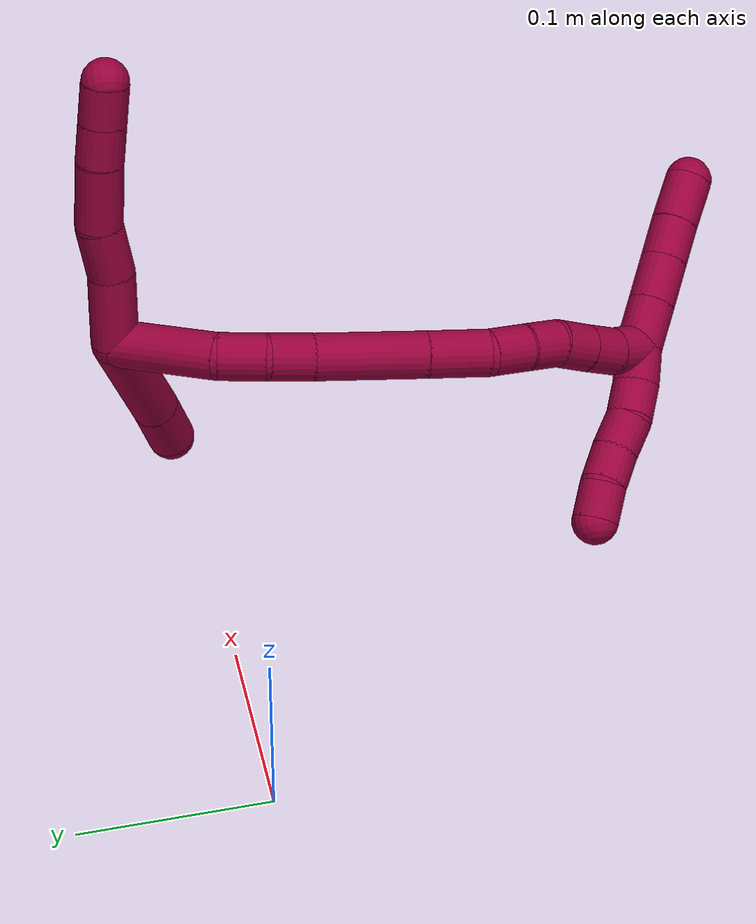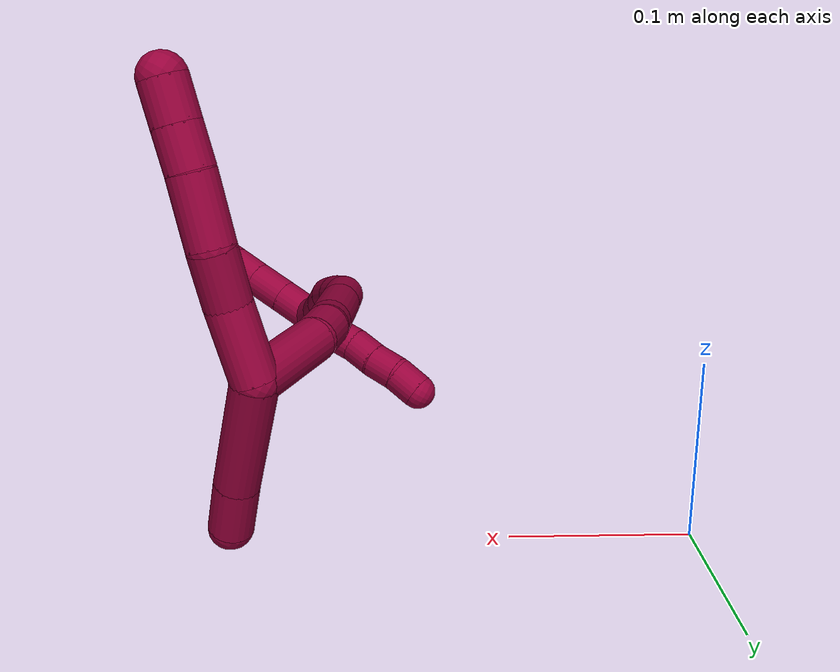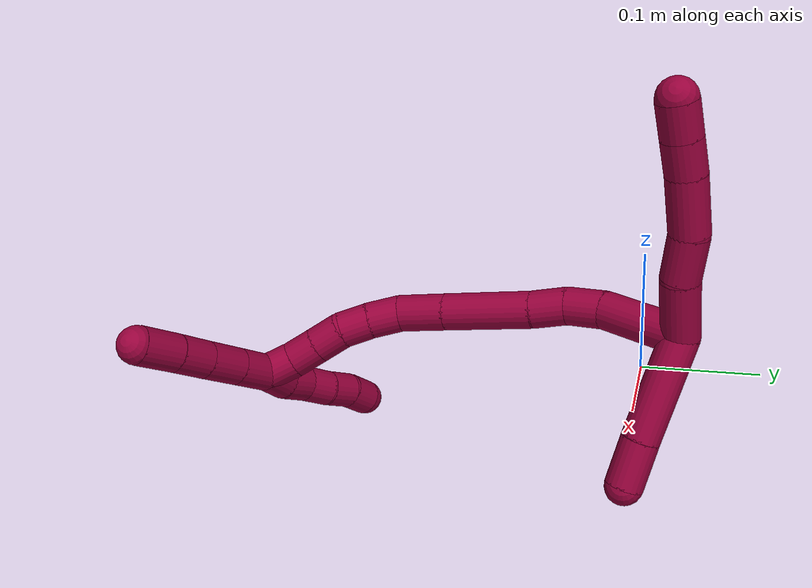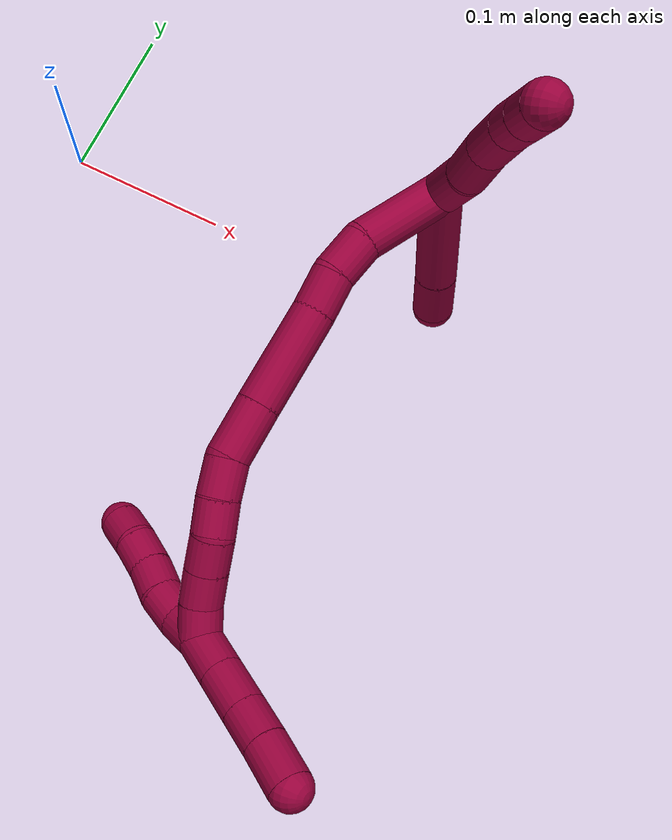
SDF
<sdf version="1.7">
 <world name="default">
  <model name="8">
   <static>0</static>
   <link name="8">
    <collision name="collision-cylinder-e_1_2_8">
     <pose>-0.012308 0.005212 0.015021 -0.333969 -0.658768 0.115109</pose>
     <geometry><cylinder><radius>0.0125</radius><length>0.040214</length></cylinder></geometry>
     <surface>
      <friction><ode><mu>1.16</mu><mu2>1.16</mu2><slip1>0</slip1><slip2>0</slip2></ode></friction>
      <contact><ode><kp>1e+06</kp><kd>1</kd><max_vel>0</max_vel><min_depth>0.001</min_depth></ode></contact>
     </surface>
    </collision>
    <visual name="visual-cylinder-e_1_2_8">
     <pose>-0.012308 0.005212 0.015021 -0.333969 -0.658768 0.115109</pose>
     <geometry><cylinder><radius>0.0125</radius><length>0.040214</length></cylinder></geometry>
     <material><ambient>0.584314 0 0.227451 1</ambient></material>
    </visual>
    <collision name="collision-cylinder-e_2_8_9">
     <pose>-0.033259 0.017011 0.040032 -0.582953 -0.62549 0.193423</pose>
     <geometry><cylinder><radius>0.0125</radius><length>0.029523</length></cylinder></geometry>
     <surface>
      <friction><ode><mu>1.16</mu><mu2>1.16</mu2><slip1>0</slip1><slip2>0</slip2></ode></friction>
      <contact><ode><kp>1e+06</kp><kd>1</kd><max_vel>0</max_vel><min_depth>0.001</min_depth></ode></contact>
     </surface>
    </collision>
    <visual name="visual-cylinder-e_2_8_9">
     <pose>-0.033259 0.017011 0.040032 -0.582953 -0.62549 0.193423</pose>
     <geometry><cylinder><radius>0.0125</radius><length>0.029523</length></cylinder></geometry>
     <material><ambient>0.584314 0 0.227451 1</ambient></material>
    </visual>
    <collision name="collision-cylinder-e_3_9_10">
     <pose>-0.054137 0.027799 0.062773 -0.318259 -0.739099 0.124167</pose>
     <geometry><cylinder><radius>0.0125</radius><length>0.036327</length></cylinder></geometry>
     <surface>
      <friction><ode><mu>1.16</mu><mu2>1.16</mu2><slip1>0</slip1><slip2>0</slip2></ode></friction>
      <contact><ode><kp>1e+06</kp><kd>1</kd><max_vel>0</max_vel><min_depth>0.001</min_depth></ode></contact>
     </surface>
    </collision>
    <visual name="visual-cylinder-e_3_9_10">
     <pose>-0.054137 0.027799 0.062773 -0.318259 -0.739099 0.124167</pose>
     <geometry><cylinder><radius>0.0125</radius><length>0.036327</length></cylinder></geometry>
     <material><ambient>0.584314 0 0.227451 1</ambient></material>
    </visual>
    <collision name="collision-cylinder-e_4_10_11">
     <pose>-0.073665 0.033797 0.083571 -0.219693 -0.724071 0.083492</pose>
     <geometry><cylinder><radius>0.0125</radius><length>0.022016</length></cylinder></geometry>
     <surface>
      <friction><ode><mu>1.16</mu><mu2>1.16</mu2><slip1>0</slip1><slip2>0</slip2></ode></friction>
      <contact><ode><kp>1e+06</kp><kd>1</kd><max_vel>0</max_vel><min_depth>0.001</min_depth></ode></contact>
     </surface>
    </collision>
    <visual name="visual-cylinder-e_4_10_11">
     <pose>-0.073665 0.033797 0.083571 -0.219693 -0.724071 0.083492</pose>
     <geometry><cylinder><radius>0.0125</radius><length>0.022016</length></cylinder></geometry>
     <material><ambient>0.584314 0 0.227451 1</ambient></material>
    </visual>
    <collision name="collision-cylinder-e_5_11_6">
     <pose>-0.088238 0.037384 0.099613 -0.220228 -0.726618 0.084018</pose>
     <geometry><cylinder><radius>0.0125</radius><length>0.02192</length></cylinder></geometry>
     <surface>
      <friction><ode><mu>1.16</mu><mu2>1.16</mu2><slip1>0</slip1><slip2>0</slip2></ode></friction>
      <contact><ode><kp>1e+06</kp><kd>1</kd><max_vel>0</max_vel><min_depth>0.001</min_depth></ode></contact>
     </surface>
    </collision>
    <visual name="visual-cylinder-e_5_11_6">
     <pose>-0.088238 0.037384 0.099613 -0.220228 -0.726618 0.084018</pose>
     <geometry><cylinder><radius>0.0125</radius><length>0.02192</length></cylinder></geometry>
     <material><ambient>0.584314 0 0.227451 1</ambient></material>
    </visual>
    <collision name="collision-cylinder-e_1_2_12">
     <pose>0.023615 -0.022484 -0.010444 2.00565 0.761094 1.11997</pose>
     <geometry><cylinder><radius>0.0125</radius><length>0.068476</length></cylinder></geometry>
     <surface>
      <friction><ode><mu>1.16</mu><mu2>1.16</mu2><slip1>0</slip1><slip2>0</slip2></ode></friction>
      <contact><ode><kp>1e+06</kp><kd>1</kd><max_vel>0</max_vel><min_depth>0.001</min_depth></ode></contact>
     </surface>
    </collision>
    <visual name="visual-cylinder-e_1_2_12">
     <pose>0.023615 -0.022484 -0.010444 2.00565 0.761094 1.11997</pose>
     <geometry><cylinder><radius>0.0125</radius><length>0.068476</length></cylinder></geometry>
     <material><ambient>0.584314 0 0.227451 1</ambient></material>
    </visual>
    <collision name="collision-cylinder-e_2_12_5">
     <pose>0.058227 -0.054922 -0.026216 2.06226 0.772284 1.19264</pose>
     <geometry><cylinder><radius>0.0125</radius><length>0.031524</length></cylinder></geometry>
     <surface>
      <friction><ode><mu>1.16</mu><mu2>1.16</mu2><slip1>0</slip1><slip2>0</slip2></ode></friction>
      <contact><ode><kp>1e+06</kp><kd>1</kd><max_vel>0</max_vel><min_depth>0.001</min_depth></ode></contact>
     </surface>
    </collision>
    <visual name="visual-cylinder-e_2_12_5">
     <pose>0.058227 -0.054922 -0.026216 2.06226 0.772284 1.19264</pose>
     <geometry><cylinder><radius>0.0125</radius><length>0.031524</length></cylinder></geometry>
     <material><ambient>0.584314 0 0.227451 1</ambient></material>
    </visual>
    <collision name="collision-cylinder-e_1_2_13">
     <pose>-0.018784 -0.018863 -0.008761 2.00562 -0.734554 -1.08511</pose>
     <geometry><cylinder><radius>0.0125</radius><length>0.056049</length></cylinder></geometry>
     <surface>
      <friction><ode><mu>1.16</mu><mu2>1.16</mu2><slip1>0</slip1><slip2>0</slip2></ode></friction>
      <contact><ode><kp>1e+06</kp><kd>1</kd><max_vel>0</max_vel><min_depth>0.001</min_depth></ode></contact>
     </surface>
    </collision>
    <visual name="visual-cylinder-e_1_2_13">
     <pose>-0.018784 -0.018863 -0.008761 2.00562 -0.734554 -1.08511</pose>
     <geometry><cylinder><radius>0.0125</radius><length>0.056049</length></cylinder></geometry>
     <material><ambient>0.584314 0 0.227451 1</ambient></material>
    </visual>
    <collision name="collision-cylinder-e_2_13_14">
     <pose>-0.043925 -0.048581 -0.019486 1.74972 -0.522796 -0.619843</pose>
     <geometry><cylinder><radius>0.0125</radius><length>0.025465</length></cylinder></geometry>
     <surface>
      <friction><ode><mu>1.16</mu><mu2>1.16</mu2><slip1>0</slip1><slip2>0</slip2></ode></friction>
      <contact><ode><kp>1e+06</kp><kd>1</kd><max_vel>0</max_vel><min_depth>0.001</min_depth></ode></contact>
     </surface>
    </collision>
    <visual name="visual-cylinder-e_2_13_14">
     <pose>-0.043925 -0.048581 -0.019486 1.74972 -0.522796 -0.619843</pose>
     <geometry><cylinder><radius>0.0125</radius><length>0.025465</length></cylinder></geometry>
     <material><ambient>0.584314 0 0.227451 1</ambient></material>
    </visual>
    <collision name="collision-cylinder-e_3_14_15">
     <pose>-0.053613 -0.070865 -0.022294 1.64463 -0.282868 -0.304243</pose>
     <geometry><cylinder><radius>0.0125</radius><length>0.023867</length></cylinder></geometry>
     <surface>
      <friction><ode><mu>1.16</mu><mu2>1.16</mu2><slip1>0</slip1><slip2>0</slip2></ode></friction>
      <contact><ode><kp>1e+06</kp><kd>1</kd><max_vel>0</max_vel><min_depth>0.001</min_depth></ode></contact>
     </surface>
    </collision>
    <visual name="visual-cylinder-e_3_14_15">
     <pose>-0.053613 -0.070865 -0.022294 1.64463 -0.282868 -0.304243</pose>
     <geometry><cylinder><radius>0.0125</radius><length>0.023867</length></cylinder></geometry>
     <material><ambient>0.584314 0 0.227451 1</ambient></material>
    </visual>
    <collision name="collision-cylinder-e_4_15_16">
     <pose>-0.067665 -0.110045 -0.025334 1.64971 -0.367613 -0.397072</pose>
     <geometry><cylinder><radius>0.0125</radius><length>0.059664</length></cylinder></geometry>
     <surface>
      <friction><ode><mu>1.16</mu><mu2>1.16</mu2><slip1>0</slip1><slip2>0</slip2></ode></friction>
      <contact><ode><kp>1e+06</kp><kd>1</kd><max_vel>0</max_vel><min_depth>0.001</min_depth></ode></contact>
     </surface>
    </collision>
    <visual name="visual-cylinder-e_4_15_16">
     <pose>-0.067665 -0.110045 -0.025334 1.64971 -0.367613 -0.397072</pose>
     <geometry><cylinder><radius>0.0125</radius><length>0.059664</length></cylinder></geometry>
     <material><ambient>0.584314 0 0.227451 1</ambient></material>
    </visual>
    <collision name="collision-cylinder-e_5_16_17">
     <pose>-0.084158 -0.153077 -0.028588 1.64002 -0.360342 -0.385578</pose>
     <geometry><cylinder><radius>0.0125</radius><length>0.032735</length></cylinder></geometry>
     <surface>
      <friction><ode><mu>1.16</mu><mu2>1.16</mu2><slip1>0</slip1><slip2>0</slip2></ode></friction>
      <contact><ode><kp>1e+06</kp><kd>1</kd><max_vel>0</max_vel><min_depth>0.001</min_depth></ode></contact>
     </surface>
    </collision>
    <visual name="visual-cylinder-e_5_16_17">
     <pose>-0.084158 -0.153077 -0.028588 1.64002 -0.360342 -0.385578</pose>
     <geometry><cylinder><radius>0.0125</radius><length>0.032735</length></cylinder></geometry>
     <material><ambient>0.584314 0 0.227451 1</ambient></material>
    </visual>
    <collision name="collision-cylinder-e_6_17_18">
     <pose>-0.091035 -0.179213 -0.028465 1.46231 -0.100999 -0.090611</pose>
     <geometry><cylinder><radius>0.0125</radius><length>0.021953</length></cylinder></geometry>
     <surface>
      <friction><ode><mu>1.16</mu><mu2>1.16</mu2><slip1>0</slip1><slip2>0</slip2></ode></friction>
      <contact><ode><kp>1e+06</kp><kd>1</kd><max_vel>0</max_vel><min_depth>0.001</min_depth></ode></contact>
     </surface>
    </collision>
    <visual name="visual-cylinder-e_6_17_18">
     <pose>-0.091035 -0.179213 -0.028465 1.46231 -0.100999 -0.090611</pose>
     <geometry><cylinder><radius>0.0125</radius><length>0.021953</length></cylinder></geometry>
     <material><ambient>0.584314 0 0.227451 1</ambient></material>
    </visual>
    <collision name="collision-cylinder-e_7_18_19">
     <pose>-0.092068 -0.200088 -0.026018 1.44523 0.007325 0.006458</pose>
     <geometry><cylinder><radius>0.0125</radius><length>0.020197</length></cylinder></geometry>
     <surface>
      <friction><ode><mu>1.16</mu><mu2>1.16</mu2><slip1>0</slip1><slip2>0</slip2></ode></friction>
      <contact><ode><kp>1e+06</kp><kd>1</kd><max_vel>0</max_vel><min_depth>0.001</min_depth></ode></contact>
     </surface>
    </collision>
    <visual name="visual-cylinder-e_7_18_19">
     <pose>-0.092068 -0.200088 -0.026018 1.44523 0.007325 0.006458</pose>
     <geometry><cylinder><radius>0.0125</radius><length>0.020197</length></cylinder></geometry>
     <material><ambient>0.584314 0 0.227451 1</ambient></material>
    </visual>
    <collision name="collision-cylinder-e_8_19_20">
     <pose>-0.090336 -0.219944 -0.02546 1.64247 0.166515 0.178835</pose>
     <geometry><cylinder><radius>0.0125</radius><length>0.020003</length></cylinder></geometry>
     <surface>
      <friction><ode><mu>1.16</mu><mu2>1.16</mu2><slip1>0</slip1><slip2>0</slip2></ode></friction>
      <contact><ode><kp>1e+06</kp><kd>1</kd><max_vel>0</max_vel><min_depth>0.001</min_depth></ode></contact>
     </surface>
    </collision>
    <visual name="visual-cylinder-e_8_19_20">
     <pose>-0.090336 -0.219944 -0.02546 1.64247 0.166515 0.178835</pose>
     <geometry><cylinder><radius>0.0125</radius><length>0.020003</length></cylinder></geometry>
     <material><ambient>0.584314 0 0.227451 1</ambient></material>
    </visual>
    <collision name="collision-cylinder-e_9_20_21">
     <pose>-0.086989 -0.239641 -0.026595 1.61431 0.169622 0.177129</pose>
     <geometry><cylinder><radius>0.0125</radius><length>0.020023</length></cylinder></geometry>
     <surface>
      <friction><ode><mu>1.16</mu><mu2>1.16</mu2><slip1>0</slip1><slip2>0</slip2></ode></friction>
      <contact><ode><kp>1e+06</kp><kd>1</kd><max_vel>0</max_vel><min_depth>0.001</min_depth></ode></contact>
     </surface>
    </collision>
    <visual name="visual-cylinder-e_9_20_21">
     <pose>-0.086989 -0.239641 -0.026595 1.61431 0.169622 0.177129</pose>
     <geometry><cylinder><radius>0.0125</radius><length>0.020023</length></cylinder></geometry>
     <material><ambient>0.584314 0 0.227451 1</ambient></material>
    </visual>
    <collision name="collision-cylinder-e_10_21_1">
     <pose>-0.083811 -0.259295 -0.025521 1.41851 0.148948 0.127895</pose>
     <geometry><cylinder><radius>0.0125</radius><length>0.020043</length></cylinder></geometry>
     <surface>
      <friction><ode><mu>1.16</mu><mu2>1.16</mu2><slip1>0</slip1><slip2>0</slip2></ode></friction>
      <contact><ode><kp>1e+06</kp><kd>1</kd><max_vel>0</max_vel><min_depth>0.001</min_depth></ode></contact>
     </surface>
    </collision>
    <visual name="visual-cylinder-e_10_21_1">
     <pose>-0.083811 -0.259295 -0.025521 1.41851 0.148948 0.127895</pose>
     <geometry><cylinder><radius>0.0125</radius><length>0.020043</length></cylinder></geometry>
     <material><ambient>0.584314 0 0.227451 1</ambient></material>
    </visual>
    <collision name="collision-cylinder-e_1_1_22">
     <pose>-0.08069 -0.267523 -0.033758 -2.98191 0.16421 -1.59885</pose>
     <geometry><cylinder><radius>0.0125</radius><length>0.02</length></cylinder></geometry>
     <surface>
      <friction><ode><mu>1.16</mu><mu2>1.16</mu2><slip1>0</slip1><slip2>0</slip2></ode></friction>
      <contact><ode><kp>1e+06</kp><kd>1</kd><max_vel>0</max_vel><min_depth>0.001</min_depth></ode></contact>
     </surface>
    </collision>
    <visual name="visual-cylinder-e_1_1_22">
     <pose>-0.08069 -0.267523 -0.033758 -2.98191 0.16421 -1.59885</pose>
     <geometry><cylinder><radius>0.0125</radius><length>0.02</length></cylinder></geometry>
     <material><ambient>0.584314 0 0.227451 1</ambient></material>
    </visual>
    <collision name="collision-cylinder-e_2_22_23">
     <pose>-0.078805 -0.262238 -0.052778 -2.76068 0.024997 -0.129483</pose>
     <geometry><cylinder><radius>0.0125</radius><length>0.02</length></cylinder></geometry>
     <surface>
      <friction><ode><mu>1.16</mu><mu2>1.16</mu2><slip1>0</slip1><slip2>0</slip2></ode></friction>
      <contact><ode><kp>1e+06</kp><kd>1</kd><max_vel>0</max_vel><min_depth>0.001</min_depth></ode></contact>
     </surface>
    </collision>
    <visual name="visual-cylinder-e_2_22_23">
     <pose>-0.078805 -0.262238 -0.052778 -2.76068 0.024997 -0.129483</pose>
     <geometry><cylinder><radius>0.0125</radius><length>0.02</length></cylinder></geometry>
     <material><ambient>0.584314 0 0.227451 1</ambient></material>
    </visual>
    <collision name="collision-cylinder-e_3_23_24">
     <pose>-0.076629 -0.253617 -0.070558 -2.61831 0.193801 -0.696427</pose>
     <geometry><cylinder><radius>0.0125</radius><length>0.02</length></cylinder></geometry>
     <surface>
      <friction><ode><mu>1.16</mu><mu2>1.16</mu2><slip1>0</slip1><slip2>0</slip2></ode></friction>
      <contact><ode><kp>1e+06</kp><kd>1</kd><max_vel>0</max_vel><min_depth>0.001</min_depth></ode></contact>
     </surface>
    </collision>
    <visual name="visual-cylinder-e_3_23_24">
     <pose>-0.076629 -0.253617 -0.070558 -2.61831 0.193801 -0.696427</pose>
     <geometry><cylinder><radius>0.0125</radius><length>0.02</length></cylinder></geometry>
     <material><ambient>0.584314 0 0.227451 1</ambient></material>
    </visual>
    <collision name="collision-cylinder-e_4_24_25">
     <pose>-0.073954 -0.244037 -0.087865 -2.65351 0.074974 -0.298988</pose>
     <geometry><cylinder><radius>0.0125</radius><length>0.02</length></cylinder></geometry>
     <surface>
      <friction><ode><mu>1.16</mu><mu2>1.16</mu2><slip1>0</slip1><slip2>0</slip2></ode></friction>
      <contact><ode><kp>1e+06</kp><kd>1</kd><max_vel>0</max_vel><min_depth>0.001</min_depth></ode></contact>
     </surface>
    </collision>
    <visual name="visual-cylinder-e_4_24_25">
     <pose>-0.073954 -0.244037 -0.087865 -2.65351 0.074974 -0.298988</pose>
     <geometry><cylinder><radius>0.0125</radius><length>0.02</length></cylinder></geometry>
     <material><ambient>0.584314 0 0.227451 1</ambient></material>
    </visual>
    <collision name="collision-cylinder-e_5_25_4">
     <pose>-0.071175 -0.236435 -0.106017 -2.83812 0.20443 -1.18173</pose>
     <geometry><cylinder><radius>0.0125</radius><length>0.02</length></cylinder></geometry>
     <surface>
      <friction><ode><mu>1.16</mu><mu2>1.16</mu2><slip1>0</slip1><slip2>0</slip2></ode></friction>
      <contact><ode><kp>1e+06</kp><kd>1</kd><max_vel>0</max_vel><min_depth>0.001</min_depth></ode></contact>
     </surface>
    </collision>
    <visual name="visual-cylinder-e_5_25_4">
     <pose>-0.071175 -0.236435 -0.106017 -2.83812 0.20443 -1.18173</pose>
     <geometry><cylinder><radius>0.0125</radius><length>0.02</length></cylinder></geometry>
     <material><ambient>0.584314 0 0.227451 1</ambient></material>
    </visual>
    <collision name="collision-cylinder-e_1_1_26">
     <pose>-0.083919 -0.274211 -0.01241 0.415384 -0.125045 -0.026384</pose>
     <geometry><cylinder><radius>0.0125</radius><length>0.025572</length></cylinder></geometry>
     <surface>
      <friction><ode><mu>1.16</mu><mu2>1.16</mu2><slip1>0</slip1><slip2>0</slip2></ode></friction>
      <contact><ode><kp>1e+06</kp><kd>1</kd><max_vel>0</max_vel><min_depth>0.001</min_depth></ode></contact>
     </surface>
    </collision>
    <visual name="visual-cylinder-e_1_1_26">
     <pose>-0.083919 -0.274211 -0.01241 0.415384 -0.125045 -0.026384</pose>
     <geometry><cylinder><radius>0.0125</radius><length>0.025572</length></cylinder></geometry>
     <material><ambient>0.584314 0 0.227451 1</ambient></material>
    </visual>
    <collision name="collision-cylinder-e_2_26_27">
     <pose>-0.087091 -0.284434 0.010826 0.413585 -0.12355 -0.025951</pose>
     <geometry><cylinder><radius>0.0125</radius><length>0.025595</length></cylinder></geometry>
     <surface>
      <friction><ode><mu>1.16</mu><mu2>1.16</mu2><slip1>0</slip1><slip2>0</slip2></ode></friction>
      <contact><ode><kp>1e+06</kp><kd>1</kd><max_vel>0</max_vel><min_depth>0.001</min_depth></ode></contact>
     </surface>
    </collision>
    <visual name="visual-cylinder-e_2_26_27">
     <pose>-0.087091 -0.284434 0.010826 0.413585 -0.12355 -0.025951</pose>
     <geometry><cylinder><radius>0.0125</radius><length>0.025595</length></cylinder></geometry>
     <material><ambient>0.584314 0 0.227451 1</ambient></material>
    </visual>
    <collision name="collision-cylinder-e_3_27_28">
     <pose>-0.090147 -0.293919 0.032596 0.407752 -0.133088 -0.027555</pose>
     <geometry><cylinder><radius>0.0125</radius><length>0.02229</length></cylinder></geometry>
     <surface>
      <friction><ode><mu>1.16</mu><mu2>1.16</mu2><slip1>0</slip1><slip2>0</slip2></ode></friction>
      <contact><ode><kp>1e+06</kp><kd>1</kd><max_vel>0</max_vel><min_depth>0.001</min_depth></ode></contact>
     </surface>
    </collision>
    <visual name="visual-cylinder-e_3_27_28">
     <pose>-0.090147 -0.293919 0.032596 0.407752 -0.133088 -0.027555</pose>
     <geometry><cylinder><radius>0.0125</radius><length>0.02229</length></cylinder></geometry>
     <material><ambient>0.584314 0 0.227451 1</ambient></material>
    </visual>
    <collision name="collision-cylinder-e_4_28_3">
     <pose>-0.093417 -0.30395 0.054611 0.444159 -0.135393 -0.030617</pose>
     <geometry><cylinder><radius>0.0125</radius><length>0.026543</length></cylinder></geometry>
     <surface>
      <friction><ode><mu>1.16</mu><mu2>1.16</mu2><slip1>0</slip1><slip2>0</slip2></ode></friction>
      <contact><ode><kp>1e+06</kp><kd>1</kd><max_vel>0</max_vel><min_depth>0.001</min_depth></ode></contact>
     </surface>
    </collision>
    <visual name="visual-cylinder-e_4_28_3">
     <pose>-0.093417 -0.30395 0.054611 0.444159 -0.135393 -0.030617</pose>
     <geometry><cylinder><radius>0.0125</radius><length>0.026543</length></cylinder></geometry>
     <material><ambient>0.584314 0 0.227451 1</ambient></material>
    </visual>
    <collision name="collision-sphere-3">
     <pose>-0.095208 -0.3096 0.066485 0 -0 0</pose>
     <geometry><sphere><radius>0.0125</radius></sphere></geometry>
     <surface>
      <friction><ode><mu>1.16</mu><mu2>1.16</mu2><slip1>0</slip1><slip2>0</slip2></ode></friction>
      <contact><ode><kp>1e+06</kp><kd>1</kd><max_vel>0</max_vel><min_depth>0.001</min_depth></ode></contact>
     </surface>
    </collision>
    <visual name="visual-sphere-3">
     <pose>-0.095208 -0.3096 0.066485 0 -0 0</pose>
     <geometry><sphere><radius>0.0125</radius></sphere></geometry>
     <material><ambient>0.584314 0 0.227451 1</ambient></material>
    </visual>
    <collision name="collision-sphere-28">
     <pose>-0.091626 -0.298299 0.042737 0 -0 0</pose>
     <geometry><sphere><radius>0.0125</radius></sphere></geometry>
     <surface>
      <friction><ode><mu>1.16</mu><mu2>1.16</mu2><slip1>0</slip1><slip2>0</slip2></ode></friction>
      <contact><ode><kp>1e+06</kp><kd>1</kd><max_vel>0</max_vel><min_depth>0.001</min_depth></ode></contact>
     </surface>
    </collision>
    <visual name="visual-sphere-28">
     <pose>-0.091626 -0.298299 0.042737 0 -0 0</pose>
     <geometry><sphere><radius>0.0125</radius></sphere></geometry>
     <material><ambient>0.584314 0 0.227451 1</ambient></material>
    </visual>
    <collision name="collision-sphere-27">
     <pose>-0.088668 -0.289538 0.022455 0 -0 0</pose>
     <geometry><sphere><radius>0.0125</radius></sphere></geometry>
     <surface>
      <friction><ode><mu>1.16</mu><mu2>1.16</mu2><slip1>0</slip1><slip2>0</slip2></ode></friction>
      <contact><ode><kp>1e+06</kp><kd>1</kd><max_vel>0</max_vel><min_depth>0.001</min_depth></ode></contact>
     </surface>
    </collision>
    <visual name="visual-sphere-27">
     <pose>-0.088668 -0.289538 0.022455 0 -0 0</pose>
     <geometry><sphere><radius>0.0125</radius></sphere></geometry>
     <material><ambient>0.584314 0 0.227451 1</ambient></material>
    </visual>
    <collision name="collision-sphere-26">
     <pose>-0.085514 -0.27933 -0.000803 0 -0 0</pose>
     <geometry><sphere><radius>0.0125</radius></sphere></geometry>
     <surface>
      <friction><ode><mu>1.16</mu><mu2>1.16</mu2><slip1>0</slip1><slip2>0</slip2></ode></friction>
      <contact><ode><kp>1e+06</kp><kd>1</kd><max_vel>0</max_vel><min_depth>0.001</min_depth></ode></contact>
     </surface>
    </collision>
    <visual name="visual-sphere-26">
     <pose>-0.085514 -0.27933 -0.000803 0 -0 0</pose>
     <geometry><sphere><radius>0.0125</radius></sphere></geometry>
     <material><ambient>0.584314 0 0.227451 1</ambient></material>
    </visual>
    <collision name="collision-sphere-4">
     <pose>-0.069145 -0.233509 -0.115362 0 -0 0</pose>
     <geometry><sphere><radius>0.0125</radius></sphere></geometry>
     <surface>
      <friction><ode><mu>1.16</mu><mu2>1.16</mu2><slip1>0</slip1><slip2>0</slip2></ode></friction>
      <contact><ode><kp>1e+06</kp><kd>1</kd><max_vel>0</max_vel><min_depth>0.001</min_depth></ode></contact>
     </surface>
    </collision>
    <visual name="visual-sphere-4">
     <pose>-0.069145 -0.233509 -0.115362 0 -0 0</pose>
     <geometry><sphere><radius>0.0125</radius></sphere></geometry>
     <material><ambient>0.584314 0 0.227451 1</ambient></material>
    </visual>
    <collision name="collision-sphere-25">
     <pose>-0.073205 -0.239361 -0.096673 0 -0 0</pose>
     <geometry><sphere><radius>0.0125</radius></sphere></geometry>
     <surface>
      <friction><ode><mu>1.16</mu><mu2>1.16</mu2><slip1>0</slip1><slip2>0</slip2></ode></friction>
      <contact><ode><kp>1e+06</kp><kd>1</kd><max_vel>0</max_vel><min_depth>0.001</min_depth></ode></contact>
     </surface>
    </collision>
    <visual name="visual-sphere-25">
     <pose>-0.073205 -0.239361 -0.096673 0 -0 0</pose>
     <geometry><sphere><radius>0.0125</radius></sphere></geometry>
     <material><ambient>0.584314 0 0.227451 1</ambient></material>
    </visual>
    <collision name="collision-sphere-24">
     <pose>-0.074703 -0.248714 -0.079058 0 -0 0</pose>
     <geometry><sphere><radius>0.0125</radius></sphere></geometry>
     <surface>
      <friction><ode><mu>1.16</mu><mu2>1.16</mu2><slip1>0</slip1><slip2>0</slip2></ode></friction>
      <contact><ode><kp>1e+06</kp><kd>1</kd><max_vel>0</max_vel><min_depth>0.001</min_depth></ode></contact>
     </surface>
    </collision>
    <visual name="visual-sphere-24">
     <pose>-0.074703 -0.248714 -0.079058 0 -0 0</pose>
     <geometry><sphere><radius>0.0125</radius></sphere></geometry>
     <material><ambient>0.584314 0 0.227451 1</ambient></material>
    </visual>
    <collision name="collision-sphere-23">
     <pose>-0.078555 -0.258521 -0.062059 0 -0 0</pose>
     <geometry><sphere><radius>0.0125</radius></sphere></geometry>
     <surface>
      <friction><ode><mu>1.16</mu><mu2>1.16</mu2><slip1>0</slip1><slip2>0</slip2></ode></friction>
      <contact><ode><kp>1e+06</kp><kd>1</kd><max_vel>0</max_vel><min_depth>0.001</min_depth></ode></contact>
     </surface>
    </collision>
    <visual name="visual-sphere-23">
     <pose>-0.078555 -0.258521 -0.062059 0 -0 0</pose>
     <geometry><sphere><radius>0.0125</radius></sphere></geometry>
     <material><ambient>0.584314 0 0.227451 1</ambient></material>
    </visual>
    <collision name="collision-sphere-22">
     <pose>-0.079055 -0.265954 -0.043498 0 -0 0</pose>
     <geometry><sphere><radius>0.0125</radius></sphere></geometry>
     <surface>
      <friction><ode><mu>1.16</mu><mu2>1.16</mu2><slip1>0</slip1><slip2>0</slip2></ode></friction>
      <contact><ode><kp>1e+06</kp><kd>1</kd><max_vel>0</max_vel><min_depth>0.001</min_depth></ode></contact>
     </surface>
    </collision>
    <visual name="visual-sphere-22">
     <pose>-0.079055 -0.265954 -0.043498 0 -0 0</pose>
     <geometry><sphere><radius>0.0125</radius></sphere></geometry>
     <material><ambient>0.584314 0 0.227451 1</ambient></material>
    </visual>
    <collision name="collision-sphere-1">
     <pose>-0.082324 -0.269091 -0.024018 0 -0 0</pose>
     <geometry><sphere><radius>0.0125</radius></sphere></geometry>
     <surface>
      <friction><ode><mu>1.16</mu><mu2>1.16</mu2><slip1>0</slip1><slip2>0</slip2></ode></friction>
      <contact><ode><kp>1e+06</kp><kd>1</kd><max_vel>0</max_vel><min_depth>0.001</min_depth></ode></contact>
     </surface>
    </collision>
    <visual name="visual-sphere-1">
     <pose>-0.082324 -0.269091 -0.024018 0 -0 0</pose>
     <geometry><sphere><radius>0.0125</radius></sphere></geometry>
     <material><ambient>0.584314 0 0.227451 1</ambient></material>
    </visual>
    <collision name="collision-sphere-21">
     <pose>-0.085299 -0.2495 -0.027025 0 -0 0</pose>
     <geometry><sphere><radius>0.0125</radius></sphere></geometry>
     <surface>
      <friction><ode><mu>1.16</mu><mu2>1.16</mu2><slip1>0</slip1><slip2>0</slip2></ode></friction>
      <contact><ode><kp>1e+06</kp><kd>1</kd><max_vel>0</max_vel><min_depth>0.001</min_depth></ode></contact>
     </surface>
    </collision>
    <visual name="visual-sphere-21">
     <pose>-0.085299 -0.2495 -0.027025 0 -0 0</pose>
     <geometry><sphere><radius>0.0125</radius></sphere></geometry>
     <material><ambient>0.584314 0 0.227451 1</ambient></material>
    </visual>
    <collision name="collision-sphere-6">
     <pose>-0.09552 0.039173 0.107607 0 -0 0</pose>
     <geometry><sphere><radius>0.0125</radius></sphere></geometry>
     <surface>
      <friction><ode><mu>1.16</mu><mu2>1.16</mu2><slip1>0</slip1><slip2>0</slip2></ode></friction>
      <contact><ode><kp>1e+06</kp><kd>1</kd><max_vel>0</max_vel><min_depth>0.001</min_depth></ode></contact>
     </surface>
    </collision>
    <visual name="visual-sphere-6">
     <pose>-0.09552 0.039173 0.107607 0 -0 0</pose>
     <geometry><sphere><radius>0.0125</radius></sphere></geometry>
     <material><ambient>0.584314 0 0.227451 1</ambient></material>
    </visual>
    <collision name="collision-sphere-11">
     <pose>-0.080957 0.035594 0.091619 0 -0 0</pose>
     <geometry><sphere><radius>0.0125</radius></sphere></geometry>
     <surface>
      <friction><ode><mu>1.16</mu><mu2>1.16</mu2><slip1>0</slip1><slip2>0</slip2></ode></friction>
      <contact><ode><kp>1e+06</kp><kd>1</kd><max_vel>0</max_vel><min_depth>0.001</min_depth></ode></contact>
     </surface>
    </collision>
    <visual name="visual-sphere-11">
     <pose>-0.080957 0.035594 0.091619 0 -0 0</pose>
     <geometry><sphere><radius>0.0125</radius></sphere></geometry>
     <material><ambient>0.584314 0 0.227451 1</ambient></material>
    </visual>
    <collision name="collision-sphere-10">
     <pose>-0.066373 0.032 0.075523 0 -0 0</pose>
     <geometry><sphere><radius>0.0125</radius></sphere></geometry>
     <surface>
      <friction><ode><mu>1.16</mu><mu2>1.16</mu2><slip1>0</slip1><slip2>0</slip2></ode></friction>
      <contact><ode><kp>1e+06</kp><kd>1</kd><max_vel>0</max_vel><min_depth>0.001</min_depth></ode></contact>
     </surface>
    </collision>
    <visual name="visual-sphere-10">
     <pose>-0.066373 0.032 0.075523 0 -0 0</pose>
     <geometry><sphere><radius>0.0125</radius></sphere></geometry>
     <material><ambient>0.584314 0 0.227451 1</ambient></material>
    </visual>
    <collision name="collision-sphere-9">
     <pose>-0.041902 0.023599 0.050023 0 -0 0</pose>
     <geometry><sphere><radius>0.0125</radius></sphere></geometry>
     <surface>
      <friction><ode><mu>1.16</mu><mu2>1.16</mu2><slip1>0</slip1><slip2>0</slip2></ode></friction>
      <contact><ode><kp>1e+06</kp><kd>1</kd><max_vel>0</max_vel><min_depth>0.001</min_depth></ode></contact>
     </surface>
    </collision>
    <visual name="visual-sphere-9">
     <pose>-0.041902 0.023599 0.050023 0 -0 0</pose>
     <geometry><sphere><radius>0.0125</radius></sphere></geometry>
     <material><ambient>0.584314 0 0.227451 1</ambient></material>
    </visual>
    <collision name="collision-sphere-2">
     <geometry><sphere><radius>0.0125</radius></sphere></geometry>
     <surface>
      <friction><ode><mu>1.16</mu><mu2>1.16</mu2><slip1>0</slip1><slip2>0</slip2></ode></friction>
      <contact><ode><kp>1e+06</kp><kd>1</kd><max_vel>0</max_vel><min_depth>0.001</min_depth></ode></contact>
     </surface>
    </collision>
    <visual name="visual-sphere-2">
     <geometry><sphere><radius>0.0125</radius></sphere></geometry>
     <material><ambient>0.584314 0 0.227451 1</ambient></material>
    </visual>
    <collision name="collision-sphere-19">
     <pose>-0.091994 -0.210107 -0.024754 0 -0 0</pose>
     <geometry><sphere><radius>0.0125</radius></sphere></geometry>
     <surface>
      <friction><ode><mu>1.16</mu><mu2>1.16</mu2><slip1>0</slip1><slip2>0</slip2></ode></friction>
      <contact><ode><kp>1e+06</kp><kd>1</kd><max_vel>0</max_vel><min_depth>0.001</min_depth></ode></contact>
     </surface>
    </collision>
    <visual name="visual-sphere-19">
     <pose>-0.091994 -0.210107 -0.024754 0 -0 0</pose>
     <geometry><sphere><radius>0.0125</radius></sphere></geometry>
     <material><ambient>0.584314 0 0.227451 1</ambient></material>
    </visual>
    <collision name="collision-sphere-8">
     <pose>-0.024617 0.010424 0.030042 0 -0 0</pose>
     <geometry><sphere><radius>0.0125</radius></sphere></geometry>
     <surface>
      <friction><ode><mu>1.16</mu><mu2>1.16</mu2><slip1>0</slip1><slip2>0</slip2></ode></friction>
      <contact><ode><kp>1e+06</kp><kd>1</kd><max_vel>0</max_vel><min_depth>0.001</min_depth></ode></contact>
     </surface>
    </collision>
    <visual name="visual-sphere-8">
     <pose>-0.024617 0.010424 0.030042 0 -0 0</pose>
     <geometry><sphere><radius>0.0125</radius></sphere></geometry>
     <material><ambient>0.584314 0 0.227451 1</ambient></material>
    </visual>
    <collision name="collision-sphere-12">
     <pose>0.047229 -0.044968 -0.020888 0 -0 0</pose>
     <geometry><sphere><radius>0.0125</radius></sphere></geometry>
     <surface>
      <friction><ode><mu>1.16</mu><mu2>1.16</mu2><slip1>0</slip1><slip2>0</slip2></ode></friction>
      <contact><ode><kp>1e+06</kp><kd>1</kd><max_vel>0</max_vel><min_depth>0.001</min_depth></ode></contact>
     </surface>
    </collision>
    <visual name="visual-sphere-12">
     <pose>0.047229 -0.044968 -0.020888 0 -0 0</pose>
     <geometry><sphere><radius>0.0125</radius></sphere></geometry>
     <material><ambient>0.584314 0 0.227451 1</ambient></material>
    </visual>
    <collision name="collision-sphere-5">
     <pose>0.069225 -0.064876 -0.031544 0 -0 0</pose>
     <geometry><sphere><radius>0.0125</radius></sphere></geometry>
     <surface>
      <friction><ode><mu>1.16</mu><mu2>1.16</mu2><slip1>0</slip1><slip2>0</slip2></ode></friction>
      <contact><ode><kp>1e+06</kp><kd>1</kd><max_vel>0</max_vel><min_depth>0.001</min_depth></ode></contact>
     </surface>
    </collision>
    <visual name="visual-sphere-5">
     <pose>0.069225 -0.064876 -0.031544 0 -0 0</pose>
     <geometry><sphere><radius>0.0125</radius></sphere></geometry>
     <material><ambient>0.584314 0 0.227451 1</ambient></material>
    </visual>
    <collision name="collision-sphere-13">
     <pose>-0.037567 -0.037725 -0.017522 0 -0 0</pose>
     <geometry><sphere><radius>0.0125</radius></sphere></geometry>
     <surface>
      <friction><ode><mu>1.16</mu><mu2>1.16</mu2><slip1>0</slip1><slip2>0</slip2></ode></friction>
      <contact><ode><kp>1e+06</kp><kd>1</kd><max_vel>0</max_vel><min_depth>0.001</min_depth></ode></contact>
     </surface>
    </collision>
    <visual name="visual-sphere-13">
     <pose>-0.037567 -0.037725 -0.017522 0 -0 0</pose>
     <geometry><sphere><radius>0.0125</radius></sphere></geometry>
     <material><ambient>0.584314 0 0.227451 1</ambient></material>
    </visual>
    <collision name="collision-sphere-14">
     <pose>-0.050282 -0.059437 -0.021449 0 -0 0</pose>
     <geometry><sphere><radius>0.0125</radius></sphere></geometry>
     <surface>
      <friction><ode><mu>1.16</mu><mu2>1.16</mu2><slip1>0</slip1><slip2>0</slip2></ode></friction>
      <contact><ode><kp>1e+06</kp><kd>1</kd><max_vel>0</max_vel><min_depth>0.001</min_depth></ode></contact>
     </surface>
    </collision>
    <visual name="visual-sphere-14">
     <pose>-0.050282 -0.059437 -0.021449 0 -0 0</pose>
     <geometry><sphere><radius>0.0125</radius></sphere></geometry>
     <material><ambient>0.584314 0 0.227451 1</ambient></material>
    </visual>
    <collision name="collision-sphere-15">
     <pose>-0.056944 -0.082293 -0.02314 0 -0 0</pose>
     <geometry><sphere><radius>0.0125</radius></sphere></geometry>
     <surface>
      <friction><ode><mu>1.16</mu><mu2>1.16</mu2><slip1>0</slip1><slip2>0</slip2></ode></friction>
      <contact><ode><kp>1e+06</kp><kd>1</kd><max_vel>0</max_vel><min_depth>0.001</min_depth></ode></contact>
     </surface>
    </collision>
    <visual name="visual-sphere-15">
     <pose>-0.056944 -0.082293 -0.02314 0 -0 0</pose>
     <geometry><sphere><radius>0.0125</radius></sphere></geometry>
     <material><ambient>0.584314 0 0.227451 1</ambient></material>
    </visual>
    <collision name="collision-sphere-16">
     <pose>-0.078386 -0.137797 -0.027529 0 -0 0</pose>
     <geometry><sphere><radius>0.0125</radius></sphere></geometry>
     <surface>
      <friction><ode><mu>1.16</mu><mu2>1.16</mu2><slip1>0</slip1><slip2>0</slip2></ode></friction>
      <contact><ode><kp>1e+06</kp><kd>1</kd><max_vel>0</max_vel><min_depth>0.001</min_depth></ode></contact>
     </surface>
    </collision>
    <visual name="visual-sphere-16">
     <pose>-0.078386 -0.137797 -0.027529 0 -0 0</pose>
     <geometry><sphere><radius>0.0125</radius></sphere></geometry>
     <material><ambient>0.584314 0 0.227451 1</ambient></material>
    </visual>
    <collision name="collision-sphere-17">
     <pose>-0.089929 -0.168357 -0.029648 0 -0 0</pose>
     <geometry><sphere><radius>0.0125</radius></sphere></geometry>
     <surface>
      <friction><ode><mu>1.16</mu><mu2>1.16</mu2><slip1>0</slip1><slip2>0</slip2></ode></friction>
      <contact><ode><kp>1e+06</kp><kd>1</kd><max_vel>0</max_vel><min_depth>0.001</min_depth></ode></contact>
     </surface>
    </collision>
    <visual name="visual-sphere-17">
     <pose>-0.089929 -0.168357 -0.029648 0 -0 0</pose>
     <geometry><sphere><radius>0.0125</radius></sphere></geometry>
     <material><ambient>0.584314 0 0.227451 1</ambient></material>
    </visual>
    <collision name="collision-sphere-18">
     <pose>-0.092142 -0.190069 -0.027283 0 -0 0</pose>
     <geometry><sphere><radius>0.0125</radius></sphere></geometry>
     <surface>
      <friction><ode><mu>1.16</mu><mu2>1.16</mu2><slip1>0</slip1><slip2>0</slip2></ode></friction>
      <contact><ode><kp>1e+06</kp><kd>1</kd><max_vel>0</max_vel><min_depth>0.001</min_depth></ode></contact>
     </surface>
    </collision>
    <visual name="visual-sphere-18">
     <pose>-0.092142 -0.190069 -0.027283 0 -0 0</pose>
     <geometry><sphere><radius>0.0125</radius></sphere></geometry>
     <material><ambient>0.584314 0 0.227451 1</ambient></material>
    </visual>
    <collision name="collision-sphere-20">
     <pose>-0.088679 -0.229782 -0.026166 0 -0 0</pose>
     <geometry><sphere><radius>0.0125</radius></sphere></geometry>
     <surface>
      <friction><ode><mu>1.16</mu><mu2>1.16</mu2><slip1>0</slip1><slip2>0</slip2></ode></friction>
      <contact><ode><kp>1e+06</kp><kd>1</kd><max_vel>0</max_vel><min_depth>0.001</min_depth></ode></contact>
     </surface>
    </collision>
    <visual name="visual-sphere-20">
     <pose>-0.088679 -0.229782 -0.026166 0 -0 0</pose>
     <geometry><sphere><radius>0.0125</radius></sphere></geometry>
     <material><ambient>0.584314 0 0.227451 1</ambient></material>
    </visual>
    <inertial>
     <pose>-0.052488 -0.122809 -0.006675 0 -0 0</pose>
     <mass>0.75</mass>
     <inertia><ixx>6.6e-05</ixx><ixy>0</ixy><ixz>0</ixz><iyy>1.9e-05</iyy><iyz>0</iyz><izz>7.8e-05</izz></inertia>
    </inertial>
   </link>
   <pose>0.232028 0.035614 0.105847 0.609606 0.871605 0.687173</pose>
  </model>
 </world>
</sdf>
